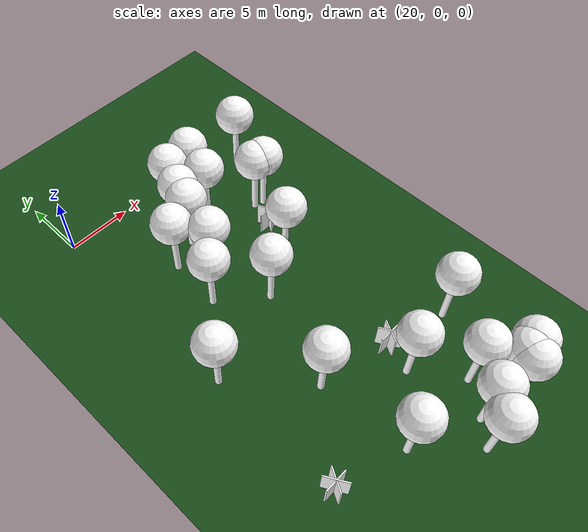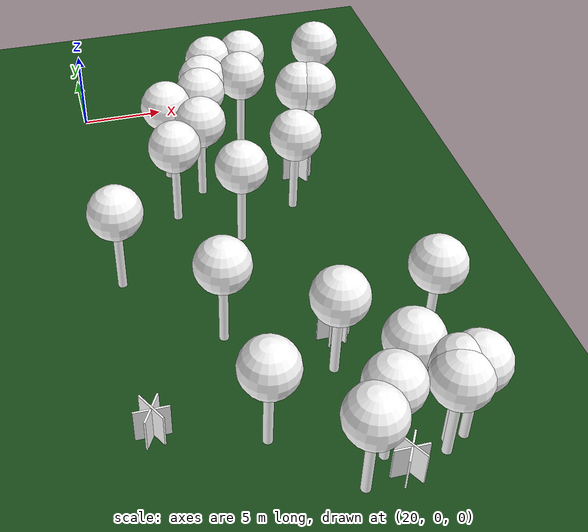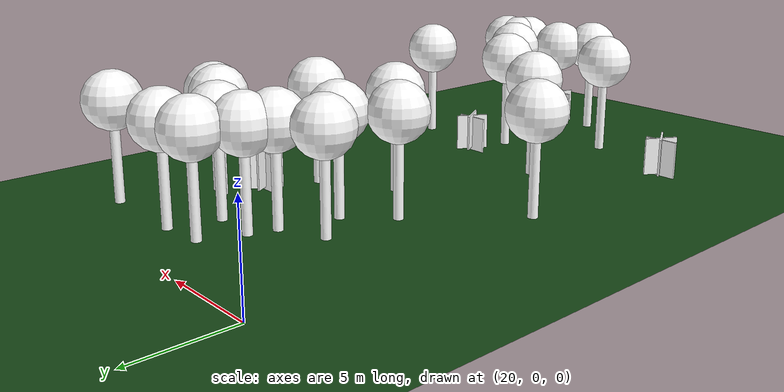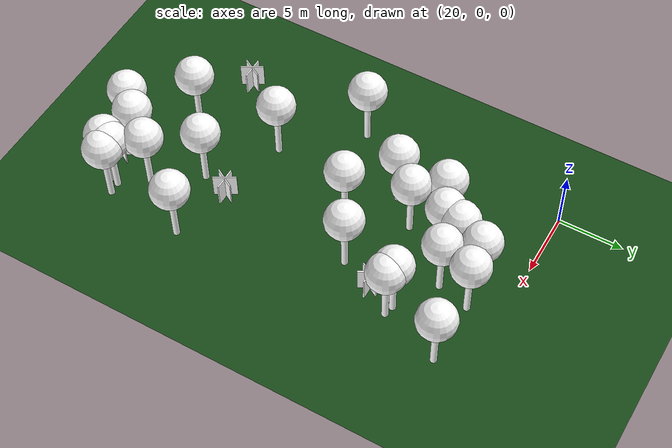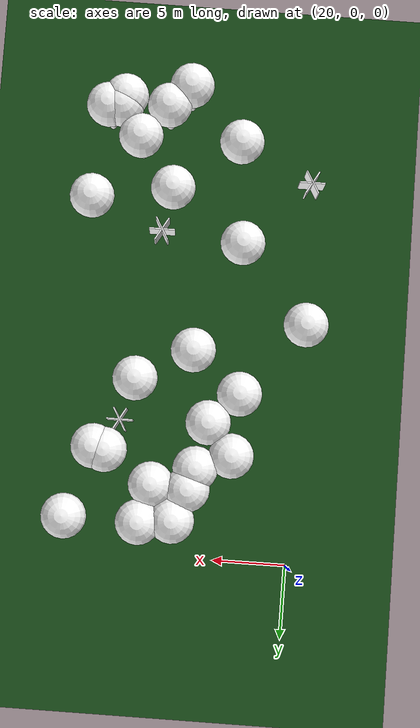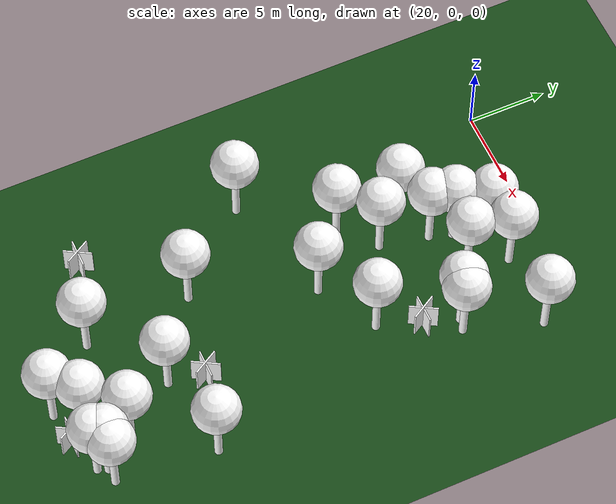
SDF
<sdf version="1.8">
 <world name="forest_world">
  <model name="fire_7">
   <pose>32.05 -9.20 1.00 0 0 0.00</pose>
   <static>true</static>
   <link name="fire_link">
    <visual name="fire_7_fire_main_0">
     <geometry><box><size>1.80 0.10 2.00</size></box></geometry>
     <material>
      <ambient>0.7 0.35 0.0 1</ambient>
      <diffuse>1 1 1 1</diffuse>
      <specular>0 0 0 1</specular>
      <emissive>0 0 0 1</emissive>
      <pbr>
       <metal><albedo_map>textures/fire.png</albedo_map><metalness>0.0</metalness><roughness>0.6</roughness></metal>
      </pbr>
     </material>
     <transparency>0.0</transparency>
     <cast_shadows>false</cast_shadows>
    </visual>
    <visual name="fire_7_fire_60_1">
     <pose>0.00 0.00 0.10 0 0 1.05</pose>
     <geometry><box><size>1.80 0.10 2.00</size></box></geometry>
     <material>
      <ambient>0.7 0.35 0.0 1</ambient>
      <diffuse>1 1 1 1</diffuse>
      <specular>0 0 0 1</specular>
      <emissive>0 0 0 1</emissive>
      <pbr>
       <metal><albedo_map>textures/fire.png</albedo_map><metalness>0.0</metalness><roughness>0.6</roughness></metal>
      </pbr>
     </material>
     <transparency>0.0</transparency>
     <cast_shadows>false</cast_shadows>
    </visual>
    <visual name="fire_7_fire_120_2">
     <pose>0.00 0.00 0.20 0 0 2.09</pose>
     <geometry><box><size>1.80 0.10 2.00</size></box></geometry>
     <material>
      <ambient>0.7 0.35 0.0 1</ambient>
      <diffuse>1 1 1 1</diffuse>
      <specular>0 0 0 1</specular>
      <emissive>0 0 0 1</emissive>
      <pbr>
       <metal><albedo_map>textures/fire.png</albedo_map><metalness>0.0</metalness><roughness>0.6</roughness></metal>
      </pbr>
     </material>
     <transparency>0.0</transparency>
     <cast_shadows>false</cast_shadows>
    </visual>
    <light type="point" name="fire_7_light_0">
     <pose>0.40 0.00 0.50 0 0 0</pose>
     <diffuse>1.0 0.7 0.3 1</diffuse>
     <specular>1.0 0.8 0.3 1</specular>
     <intensity>2</intensity>
     <attenuation>
      <range>2</range>
      <constant>0.1</constant>
      <linear>0.05</linear>
      <quadratic>0.02</quadratic>
     </attenuation>
     <cast_shadows>false</cast_shadows>
    </light>
    <light type="point" name="fire_7_light_1">
     <pose>-0.20 0.35 0.50 0 0 0</pose>
     <diffuse>1.0 0.7 0.3 1</diffuse>
     <specular>1.0 0.8 0.3 1</specular>
     <intensity>2</intensity>
     <attenuation>
      <range>2</range>
      <constant>0.1</constant>
      <linear>0.05</linear>
      <quadratic>0.02</quadratic>
     </attenuation>
     <cast_shadows>false</cast_shadows>
    </light>
    <light type="point" name="fire_7_light_2">
     <pose>-0.20 -0.35 0.50 0 0 0</pose>
     <diffuse>1.0 0.7 0.3 1</diffuse>
     <specular>1.0 0.8 0.3 1</specular>
     <intensity>2</intensity>
     <attenuation>
      <range>2</range>
      <constant>0.1</constant>
      <linear>0.05</linear>
      <quadratic>0.02</quadratic>
     </attenuation>
     <cast_shadows>false</cast_shadows>
    </light>
   </link>
   <plugin filename="libignition-gazebo-pose-publisher-system.so" name="ignition::gazebo::systems::PosePublisher">
    <frame_id>world</frame_id>
    <publish_link_pose>true</publish_link_pose>
    <use_pose_vector_msg>true</use_pose_vector_msg>
    <static_publisher>true</static_publisher>
    <static_update_frequency>1</static_update_frequency>
   </plugin>
  </model>
  <model name="fire_27">
   <pose>30.87 -31.41 1.00 0 0 0.00</pose>
   <static>true</static>
   <link name="fire_link">
    <visual name="fire_27_fire_main_0">
     <geometry><box><size>1.80 0.10 2.00</size></box></geometry>
     <material>
      <ambient>0.7 0.35 0.0 1</ambient>
      <diffuse>1 1 1 1</diffuse>
      <specular>0 0 0 1</specular>
      <emissive>0 0 0 1</emissive>
      <pbr>
       <metal><albedo_map>textures/fire.png</albedo_map><metalness>0.0</metalness><roughness>0.6</roughness></metal>
      </pbr>
     </material>
     <transparency>0.0</transparency>
     <cast_shadows>false</cast_shadows>
    </visual>
    <visual name="fire_27_fire_60_1">
     <pose>0.00 0.00 0.10 0 0 1.05</pose>
     <geometry><box><size>1.80 0.10 2.00</size></box></geometry>
     <material>
      <ambient>0.7 0.35 0.0 1</ambient>
      <diffuse>1 1 1 1</diffuse>
      <specular>0 0 0 1</specular>
      <emissive>0 0 0 1</emissive>
      <pbr>
       <metal><albedo_map>textures/fire.png</albedo_map><metalness>0.0</metalness><roughness>0.6</roughness></metal>
      </pbr>
     </material>
     <transparency>0.0</transparency>
     <cast_shadows>false</cast_shadows>
    </visual>
    <visual name="fire_27_fire_120_2">
     <pose>0.00 0.00 0.20 0 0 2.09</pose>
     <geometry><box><size>1.80 0.10 2.00</size></box></geometry>
     <material>
      <ambient>0.7 0.35 0.0 1</ambient>
      <diffuse>1 1 1 1</diffuse>
      <specular>0 0 0 1</specular>
      <emissive>0 0 0 1</emissive>
      <pbr>
       <metal><albedo_map>textures/fire.png</albedo_map><metalness>0.0</metalness><roughness>0.6</roughness></metal>
      </pbr>
     </material>
     <transparency>0.0</transparency>
     <cast_shadows>false</cast_shadows>
    </visual>
    <light type="point" name="fire_27_light_0">
     <pose>0.40 0.00 0.50 0 0 0</pose>
     <diffuse>1.0 0.7 0.3 1</diffuse>
     <specular>1.0 0.8 0.3 1</specular>
     <intensity>2</intensity>
     <attenuation>
      <range>2</range>
      <constant>0.1</constant>
      <linear>0.05</linear>
      <quadratic>0.02</quadratic>
     </attenuation>
     <cast_shadows>false</cast_shadows>
    </light>
    <light type="point" name="fire_27_light_1">
     <pose>-0.20 0.35 0.50 0 0 0</pose>
     <diffuse>1.0 0.7 0.3 1</diffuse>
     <specular>1.0 0.8 0.3 1</specular>
     <intensity>2</intensity>
     <attenuation>
      <range>2</range>
      <constant>0.1</constant>
      <linear>0.05</linear>
      <quadratic>0.02</quadratic>
     </attenuation>
     <cast_shadows>false</cast_shadows>
    </light>
    <light type="point" name="fire_27_light_2">
     <pose>-0.20 -0.35 0.50 0 0 0</pose>
     <diffuse>1.0 0.7 0.3 1</diffuse>
     <specular>1.0 0.8 0.3 1</specular>
     <intensity>2</intensity>
     <attenuation>
      <range>2</range>
      <constant>0.1</constant>
      <linear>0.05</linear>
      <quadratic>0.02</quadratic>
     </attenuation>
     <cast_shadows>false</cast_shadows>
    </light>
   </link>
   <plugin filename="libignition-gazebo-pose-publisher-system.so" name="ignition::gazebo::systems::PosePublisher">
    <frame_id>world</frame_id>
    <publish_link_pose>true</publish_link_pose>
    <use_pose_vector_msg>true</use_pose_vector_msg>
    <static_publisher>true</static_publisher>
    <static_update_frequency>1</static_update_frequency>
   </plugin>
  </model>
  <model name="fire_37">
   <pose>19.93 -26.53 1.00 0 0 0.00</pose>
   <static>true</static>
   <link name="fire_link">
    <visual name="fire_37_fire_main_0">
     <geometry><box><size>1.80 0.10 2.00</size></box></geometry>
     <material>
      <ambient>0.7 0.35 0.0 1</ambient>
      <diffuse>1 1 1 1</diffuse>
      <specular>0 0 0 1</specular>
      <emissive>0 0 0 1</emissive>
      <pbr>
       <metal><albedo_map>textures/fire.png</albedo_map><metalness>0.0</metalness><roughness>0.6</roughness></metal>
      </pbr>
     </material>
     <transparency>0.0</transparency>
     <cast_shadows>false</cast_shadows>
    </visual>
    <visual name="fire_37_fire_60_1">
     <pose>0.00 0.00 0.10 0 0 1.05</pose>
     <geometry><box><size>1.80 0.10 2.00</size></box></geometry>
     <material>
      <ambient>0.7 0.35 0.0 1</ambient>
      <diffuse>1 1 1 1</diffuse>
      <specular>0 0 0 1</specular>
      <emissive>0 0 0 1</emissive>
      <pbr>
       <metal><albedo_map>textures/fire.png</albedo_map><metalness>0.0</metalness><roughness>0.6</roughness></metal>
      </pbr>
     </material>
     <transparency>0.0</transparency>
     <cast_shadows>false</cast_shadows>
    </visual>
    <visual name="fire_37_fire_120_2">
     <pose>0.00 0.00 0.20 0 0 2.09</pose>
     <geometry><box><size>1.80 0.10 2.00</size></box></geometry>
     <material>
      <ambient>0.7 0.35 0.0 1</ambient>
      <diffuse>1 1 1 1</diffuse>
      <specular>0 0 0 1</specular>
      <emissive>0 0 0 1</emissive>
      <pbr>
       <metal><albedo_map>textures/fire.png</albedo_map><metalness>0.0</metalness><roughness>0.6</roughness></metal>
      </pbr>
     </material>
     <transparency>0.0</transparency>
     <cast_shadows>false</cast_shadows>
    </visual>
    <light type="point" name="fire_37_light_0">
     <pose>0.40 0.00 0.50 0 0 0</pose>
     <diffuse>1.0 0.7 0.3 1</diffuse>
     <specular>1.0 0.8 0.3 1</specular>
     <intensity>2</intensity>
     <attenuation>
      <range>2</range>
      <constant>0.1</constant>
      <linear>0.05</linear>
      <quadratic>0.02</quadratic>
     </attenuation>
     <cast_shadows>false</cast_shadows>
    </light>
    <light type="point" name="fire_37_light_1">
     <pose>-0.20 0.35 0.50 0 0 0</pose>
     <diffuse>1.0 0.7 0.3 1</diffuse>
     <specular>1.0 0.8 0.3 1</specular>
     <intensity>2</intensity>
     <attenuation>
      <range>2</range>
      <constant>0.1</constant>
      <linear>0.05</linear>
      <quadratic>0.02</quadratic>
     </attenuation>
     <cast_shadows>false</cast_shadows>
    </light>
    <light type="point" name="fire_37_light_2">
     <pose>-0.20 -0.35 0.50 0 0 0</pose>
     <diffuse>1.0 0.7 0.3 1</diffuse>
     <specular>1.0 0.8 0.3 1</specular>
     <intensity>2</intensity>
     <attenuation>
      <range>2</range>
      <constant>0.1</constant>
      <linear>0.05</linear>
      <quadratic>0.02</quadratic>
     </attenuation>
     <cast_shadows>false</cast_shadows>
    </light>
   </link>
   <plugin filename="libignition-gazebo-pose-publisher-system.so" name="ignition::gazebo::systems::PosePublisher">
    <frame_id>world</frame_id>
    <publish_link_pose>true</publish_link_pose>
    <use_pose_vector_msg>true</use_pose_vector_msg>
    <static_publisher>true</static_publisher>
    <static_update_frequency>1</static_update_frequency>
   </plugin>
  </model>
  <model name="fire_45">
   <pose>30.12 -22.53 1.00 0 0 0.00</pose>
   <static>true</static>
   <link name="fire_link">
    <visual name="fire_45_fire_main_0">
     <geometry><box><size>1.80 0.10 2.00</size></box></geometry>
     <material>
      <ambient>0.7 0.35 0.0 1</ambient>
      <diffuse>1 1 1 1</diffuse>
      <specular>0 0 0 1</specular>
      <emissive>0 0 0 1</emissive>
      <pbr>
       <metal><albedo_map>textures/fire.png</albedo_map><metalness>0.0</metalness><roughness>0.6</roughness></metal>
      </pbr>
     </material>
     <transparency>0.0</transparency>
     <cast_shadows>false</cast_shadows>
    </visual>
    <visual name="fire_45_fire_60_1">
     <pose>0.00 0.00 0.10 0 0 1.05</pose>
     <geometry><box><size>1.80 0.10 2.00</size></box></geometry>
     <material>
      <ambient>0.7 0.35 0.0 1</ambient>
      <diffuse>1 1 1 1</diffuse>
      <specular>0 0 0 1</specular>
      <emissive>0 0 0 1</emissive>
      <pbr>
       <metal><albedo_map>textures/fire.png</albedo_map><metalness>0.0</metalness><roughness>0.6</roughness></metal>
      </pbr>
     </material>
     <transparency>0.0</transparency>
     <cast_shadows>false</cast_shadows>
    </visual>
    <visual name="fire_45_fire_120_2">
     <pose>0.00 0.00 0.20 0 0 2.09</pose>
     <geometry><box><size>1.80 0.10 2.00</size></box></geometry>
     <material>
      <ambient>0.7 0.35 0.0 1</ambient>
      <diffuse>1 1 1 1</diffuse>
      <specular>0 0 0 1</specular>
      <emissive>0 0 0 1</emissive>
      <pbr>
       <metal><albedo_map>textures/fire.png</albedo_map><metalness>0.0</metalness><roughness>0.6</roughness></metal>
      </pbr>
     </material>
     <transparency>0.0</transparency>
     <cast_shadows>false</cast_shadows>
    </visual>
    <light type="point" name="fire_45_light_0">
     <pose>0.40 0.00 0.50 0 0 0</pose>
     <diffuse>1.0 0.7 0.3 1</diffuse>
     <specular>1.0 0.8 0.3 1</specular>
     <intensity>2</intensity>
     <attenuation>
      <range>2</range>
      <constant>0.1</constant>
      <linear>0.05</linear>
      <quadratic>0.02</quadratic>
     </attenuation>
     <cast_shadows>false</cast_shadows>
    </light>
    <light type="point" name="fire_45_light_1">
     <pose>-0.20 0.35 0.50 0 0 0</pose>
     <diffuse>1.0 0.7 0.3 1</diffuse>
     <specular>1.0 0.8 0.3 1</specular>
     <intensity>2</intensity>
     <attenuation>
      <range>2</range>
      <constant>0.1</constant>
      <linear>0.05</linear>
      <quadratic>0.02</quadratic>
     </attenuation>
     <cast_shadows>false</cast_shadows>
    </light>
    <light type="point" name="fire_45_light_2">
     <pose>-0.20 -0.35 0.50 0 0 0</pose>
     <diffuse>1.0 0.7 0.3 1</diffuse>
     <specular>1.0 0.8 0.3 1</specular>
     <intensity>2</intensity>
     <attenuation>
      <range>2</range>
      <constant>0.1</constant>
      <linear>0.05</linear>
      <quadratic>0.02</quadratic>
     </attenuation>
     <cast_shadows>false</cast_shadows>
    </light>
   </link>
   <plugin filename="libignition-gazebo-pose-publisher-system.so" name="ignition::gazebo::systems::PosePublisher">
    <frame_id>world</frame_id>
    <publish_link_pose>true</publish_link_pose>
    <use_pose_vector_msg>true</use_pose_vector_msg>
    <static_publisher>true</static_publisher>
    <static_update_frequency>1</static_update_frequency>
   </plugin>
  </model>
  <model name="tree_simple469">
   <static>1</static>
   <link name="link">
    <pose>0 0 0.1 0 -0 0</pose>
    <collision name="collision_trunk">
     <pose>0 0 2 0 -0 0</pose>
     <geometry><cylinder><radius>0.25</radius><length>4</length></cylinder></geometry>
    </collision>
    <collision name="collision_treetop">
     <pose>0 0 5.2 0 -0 0</pose>
     <geometry><sphere><radius>1.5</radius></sphere></geometry>
    </collision>
    <visual name="trunk">
     <pose>0 0 2 0 -0 0</pose>
     <geometry><cylinder><radius>0.25</radius><length>4</length></cylinder></geometry>
     <material>
      <ambient>0.5 0.5 0.5 1</ambient>
      <diffuse>1.0 1.0 1.0 1</diffuse>
      <specular>0.0 0.0 0.0 1</specular>
      <pbr>
       <metal>
        <albedo_map>../worlds/textures/tree_simple_trunk.jpg</albedo_map>
        <metalness>0.0</metalness>
        <roughness>0.8</roughness>
       </metal>
      </pbr>
     </material>
    </visual>
    <visual name="treetop">
     <pose>0 0 5.2 0 -0 0</pose>
     <geometry><sphere><radius>1.5</radius></sphere></geometry>
     <material>
      <ambient>0.5 0.5 0.5 1</ambient>
      <diffuse>1.0 1.0 1.0 1</diffuse>
      <specular>0.0 0.0 0.0 1</specular>
      <pbr>
       <metal>
        <albedo_map>../worlds/textures/tree_simple_treetop.jpg</albedo_map>
        <metalness>0.0</metalness>
        <roughness>0.9</roughness>
       </metal>
      </pbr>
     </material>
    </visual>
   </link>
   <pose>28.6908934165 -31.7515844244 0 0 -0 0</pose>
  </model>
  <model name="tree_simple468">
   <static>1</static>
   <link name="link">
    <pose>0 0 0.1 0 -0 0</pose>
    <collision name="collision_trunk">
     <pose>0 0 2 0 -0 0</pose>
     <geometry><cylinder><radius>0.25</radius><length>4</length></cylinder></geometry>
    </collision>
    <collision name="collision_treetop">
     <pose>0 0 5.2 0 -0 0</pose>
     <geometry><sphere><radius>1.5</radius></sphere></geometry>
    </collision>
    <visual name="trunk">
     <pose>0 0 2 0 -0 0</pose>
     <geometry><cylinder><radius>0.25</radius><length>4</length></cylinder></geometry>
     <material>
      <ambient>0.5 0.5 0.5 1</ambient>
      <diffuse>1.0 1.0 1.0 1</diffuse>
      <specular>0.0 0.0 0.0 1</specular>
      <pbr>
       <metal>
        <albedo_map>../worlds/textures/tree_simple_trunk.jpg</albedo_map>
        <metalness>0.0</metalness>
        <roughness>0.8</roughness>
       </metal>
      </pbr>
     </material>
    </visual>
    <visual name="treetop">
     <pose>0 0 5.2 0 -0 0</pose>
     <geometry><sphere><radius>1.5</radius></sphere></geometry>
     <material>
      <ambient>0.5 0.5 0.5 1</ambient>
      <diffuse>1.0 1.0 1.0 1</diffuse>
      <specular>0.0 0.0 0.0 1</specular>
      <pbr>
       <metal>
        <albedo_map>../worlds/textures/tree_simple_treetop.jpg</albedo_map>
        <metalness>0.0</metalness>
        <roughness>0.9</roughness>
       </metal>
      </pbr>
     </material>
    </visual>
   </link>
   <pose>33.4354348071 -7.20044037788 0 0 -0 0</pose>
  </model>
  <model name="tree_simple451">
   <static>1</static>
   <link name="link">
    <pose>0 0 0.1 0 -0 0</pose>
    <collision name="collision_trunk">
     <pose>0 0 2 0 -0 0</pose>
     <geometry><cylinder><radius>0.25</radius><length>4</length></cylinder></geometry>
    </collision>
    <collision name="collision_treetop">
     <pose>0 0 5.2 0 -0 0</pose>
     <geometry><sphere><radius>1.5</radius></sphere></geometry>
    </collision>
    <visual name="trunk">
     <pose>0 0 2 0 -0 0</pose>
     <geometry><cylinder><radius>0.25</radius><length>4</length></cylinder></geometry>
     <material>
      <ambient>0.5 0.5 0.5 1</ambient>
      <diffuse>1.0 1.0 1.0 1</diffuse>
      <specular>0.0 0.0 0.0 1</specular>
      <pbr>
       <metal>
        <albedo_map>../worlds/textures/tree_simple_trunk.jpg</albedo_map>
        <metalness>0.0</metalness>
        <roughness>0.8</roughness>
       </metal>
      </pbr>
     </material>
    </visual>
    <visual name="treetop">
     <pose>0 0 5.2 0 -0 0</pose>
     <geometry><sphere><radius>1.5</radius></sphere></geometry>
     <material>
      <ambient>0.5 0.5 0.5 1</ambient>
      <diffuse>1.0 1.0 1.0 1</diffuse>
      <specular>0.0 0.0 0.0 1</specular>
      <pbr>
       <metal>
        <albedo_map>../worlds/textures/tree_simple_treetop.jpg</albedo_map>
        <metalness>0.0</metalness>
        <roughness>0.9</roughness>
       </metal>
      </pbr>
     </material>
    </visual>
   </link>
   <pose>25.0880879186 -28.1508348671 0 0 -0 0</pose>
  </model>
  <model name="tree_simple429">
   <static>1</static>
   <link name="link">
    <pose>0 0 0.1 0 -0 0</pose>
    <collision name="collision_trunk">
     <pose>0 0 2 0 -0 0</pose>
     <geometry><cylinder><radius>0.25</radius><length>4</length></cylinder></geometry>
    </collision>
    <collision name="collision_treetop">
     <pose>0 0 5.2 0 -0 0</pose>
     <geometry><sphere><radius>1.5</radius></sphere></geometry>
    </collision>
    <visual name="trunk">
     <pose>0 0 2 0 -0 0</pose>
     <geometry><cylinder><radius>0.25</radius><length>4</length></cylinder></geometry>
     <material>
      <ambient>0.5 0.5 0.5 1</ambient>
      <diffuse>1.0 1.0 1.0 1</diffuse>
      <specular>0.0 0.0 0.0 1</specular>
      <pbr>
       <metal>
        <albedo_map>../worlds/textures/tree_simple_trunk.jpg</albedo_map>
        <metalness>0.0</metalness>
        <roughness>0.8</roughness>
       </metal>
      </pbr>
     </material>
    </visual>
    <visual name="treetop">
     <pose>0 0 5.2 0 -0 0</pose>
     <geometry><sphere><radius>1.5</radius></sphere></geometry>
     <material>
      <ambient>0.5 0.5 0.5 1</ambient>
      <diffuse>1.0 1.0 1.0 1</diffuse>
      <specular>0.0 0.0 0.0 1</specular>
      <pbr>
       <metal>
        <albedo_map>../worlds/textures/tree_simple_treetop.jpg</albedo_map>
        <metalness>0.0</metalness>
        <roughness>0.9</roughness>
       </metal>
      </pbr>
     </material>
    </visual>
   </link>
   <pose>29.4727075469 -24.7358283571 0 0 -0 0</pose>
  </model>
  <model name="tree_simple394">
   <static>1</static>
   <link name="link">
    <pose>0 0 0.1 0 -0 0</pose>
    <collision name="collision_trunk">
     <pose>0 0 2 0 -0 0</pose>
     <geometry><cylinder><radius>0.25</radius><length>4</length></cylinder></geometry>
    </collision>
    <collision name="collision_treetop">
     <pose>0 0 5.2 0 -0 0</pose>
     <geometry><sphere><radius>1.5</radius></sphere></geometry>
    </collision>
    <visual name="trunk">
     <pose>0 0 2 0 -0 0</pose>
     <geometry><cylinder><radius>0.25</radius><length>4</length></cylinder></geometry>
     <material>
      <ambient>0.5 0.5 0.5 1</ambient>
      <diffuse>1.0 1.0 1.0 1</diffuse>
      <specular>0.0 0.0 0.0 1</specular>
      <pbr>
       <metal>
        <albedo_map>../worlds/textures/tree_simple_trunk.jpg</albedo_map>
        <metalness>0.0</metalness>
        <roughness>0.8</roughness>
       </metal>
      </pbr>
     </material>
    </visual>
    <visual name="treetop">
     <pose>0 0 5.2 0 -0 0</pose>
     <geometry><sphere><radius>1.5</radius></sphere></geometry>
     <material>
      <ambient>0.5 0.5 0.5 1</ambient>
      <diffuse>1.0 1.0 1.0 1</diffuse>
      <specular>0.0 0.0 0.0 1</specular>
      <pbr>
       <metal>
        <albedo_map>../worlds/textures/tree_simple_treetop.jpg</albedo_map>
        <metalness>0.0</metalness>
        <roughness>0.9</roughness>
       </metal>
      </pbr>
     </material>
    </visual>
   </link>
   <pose>26.6658652991 -6.19294115589 0 0 -0 0</pose>
  </model>
  <model name="tree_simple390">
   <static>1</static>
   <link name="link">
    <pose>0 0 0.1 0 -0 0</pose>
    <collision name="collision_trunk">
     <pose>0 0 2 0 -0 0</pose>
     <geometry><cylinder><radius>0.25</radius><length>4</length></cylinder></geometry>
    </collision>
    <collision name="collision_treetop">
     <pose>0 0 5.2 0 -0 0</pose>
     <geometry><sphere><radius>1.5</radius></sphere></geometry>
    </collision>
    <visual name="trunk">
     <pose>0 0 2 0 -0 0</pose>
     <geometry><cylinder><radius>0.25</radius><length>4</length></cylinder></geometry>
     <material>
      <ambient>0.5 0.5 0.5 1</ambient>
      <diffuse>1.0 1.0 1.0 1</diffuse>
      <specular>0.0 0.0 0.0 1</specular>
      <pbr>
       <metal>
        <albedo_map>../worlds/textures/tree_simple_trunk.jpg</albedo_map>
        <metalness>0.0</metalness>
        <roughness>0.8</roughness>
       </metal>
      </pbr>
     </material>
    </visual>
    <visual name="treetop">
     <pose>0 0 5.2 0 -0 0</pose>
     <geometry><sphere><radius>1.5</radius></sphere></geometry>
     <material>
      <ambient>0.5 0.5 0.5 1</ambient>
      <diffuse>1.0 1.0 1.0 1</diffuse>
      <specular>0.0 0.0 0.0 1</specular>
      <pbr>
       <metal>
        <albedo_map>../worlds/textures/tree_simple_treetop.jpg</albedo_map>
        <metalness>0.0</metalness>
        <roughness>0.9</roughness>
       </metal>
      </pbr>
     </material>
    </visual>
   </link>
   <pose>34.8279648661 -23.7978261523 0 0 -0 0</pose>
  </model>
  <model name="tree_simple385">
   <static>1</static>
   <link name="link">
    <pose>0 0 0.1 0 -0 0</pose>
    <collision name="collision_trunk">
     <pose>0 0 2 0 -0 0</pose>
     <geometry><cylinder><radius>0.25</radius><length>4</length></cylinder></geometry>
    </collision>
    <collision name="collision_treetop">
     <pose>0 0 5.2 0 -0 0</pose>
     <geometry><sphere><radius>1.5</radius></sphere></geometry>
    </collision>
    <visual name="trunk">
     <pose>0 0 2 0 -0 0</pose>
     <geometry><cylinder><radius>0.25</radius><length>4</length></cylinder></geometry>
     <material>
      <ambient>0.5 0.5 0.5 1</ambient>
      <diffuse>1.0 1.0 1.0 1</diffuse>
      <specular>0.0 0.0 0.0 1</specular>
      <pbr>
       <metal>
        <albedo_map>../worlds/textures/tree_simple_trunk.jpg</albedo_map>
        <metalness>0.0</metalness>
        <roughness>0.8</roughness>
       </metal>
      </pbr>
     </material>
    </visual>
    <visual name="treetop">
     <pose>0 0 5.2 0 -0 0</pose>
     <geometry><sphere><radius>1.5</radius></sphere></geometry>
     <material>
      <ambient>0.5 0.5 0.5 1</ambient>
      <diffuse>1.0 1.0 1.0 1</diffuse>
      <specular>0.0 0.0 0.0 1</specular>
      <pbr>
       <metal>
        <albedo_map>../worlds/textures/tree_simple_treetop.jpg</albedo_map>
        <metalness>0.0</metalness>
        <roughness>0.9</roughness>
       </metal>
      </pbr>
     </material>
    </visual>
   </link>
   <pose>32.6946046779 -7.01468529962 0 0 -0 0</pose>
  </model>
  <model name="tree_simple301">
   <static>1</static>
   <link name="link">
    <pose>0 0 0.1 0 -0 0</pose>
    <collision name="collision_trunk">
     <pose>0 0 2 0 -0 0</pose>
     <geometry><cylinder><radius>0.25</radius><length>4</length></cylinder></geometry>
    </collision>
    <collision name="collision_treetop">
     <pose>0 0 5.2 0 -0 0</pose>
     <geometry><sphere><radius>1.5</radius></sphere></geometry>
    </collision>
    <visual name="trunk">
     <pose>0 0 2 0 -0 0</pose>
     <geometry><cylinder><radius>0.25</radius><length>4</length></cylinder></geometry>
     <material>
      <ambient>0.5 0.5 0.5 1</ambient>
      <diffuse>1.0 1.0 1.0 1</diffuse>
      <specular>0.0 0.0 0.0 1</specular>
      <pbr>
       <metal>
        <albedo_map>../worlds/textures/tree_simple_trunk.jpg</albedo_map>
        <metalness>0.0</metalness>
        <roughness>0.8</roughness>
       </metal>
      </pbr>
     </material>
    </visual>
    <visual name="treetop">
     <pose>0 0 5.2 0 -0 0</pose>
     <geometry><sphere><radius>1.5</radius></sphere></geometry>
     <material>
      <ambient>0.5 0.5 0.5 1</ambient>
      <diffuse>1.0 1.0 1.0 1</diffuse>
      <specular>0.0 0.0 0.0 1</specular>
      <pbr>
       <metal>
        <albedo_map>../worlds/textures/tree_simple_treetop.jpg</albedo_map>
        <metalness>0.0</metalness>
        <roughness>0.9</roughness>
       </metal>
      </pbr>
     </material>
    </visual>
   </link>
   <pose>27.965012063 -2.69695305694 0 0 -0 0</pose>
  </model>
  <model name="tree_simple298">
   <static>1</static>
   <link name="link">
    <pose>0 0 0.1 0 -0 0</pose>
    <collision name="collision_trunk">
     <pose>0 0 2 0 -0 0</pose>
     <geometry><cylinder><radius>0.25</radius><length>4</length></cylinder></geometry>
    </collision>
    <collision name="collision_treetop">
     <pose>0 0 5.2 0 -0 0</pose>
     <geometry><sphere><radius>1.5</radius></sphere></geometry>
    </collision>
    <visual name="trunk">
     <pose>0 0 2 0 -0 0</pose>
     <geometry><cylinder><radius>0.25</radius><length>4</length></cylinder></geometry>
     <material>
      <ambient>0.5 0.5 0.5 1</ambient>
      <diffuse>1.0 1.0 1.0 1</diffuse>
      <specular>0.0 0.0 0.0 1</specular>
      <pbr>
       <metal>
        <albedo_map>../worlds/textures/tree_simple_trunk.jpg</albedo_map>
        <metalness>0.0</metalness>
        <roughness>0.8</roughness>
       </metal>
      </pbr>
     </material>
    </visual>
    <visual name="treetop">
     <pose>0 0 5.2 0 -0 0</pose>
     <geometry><sphere><radius>1.5</radius></sphere></geometry>
     <material>
      <ambient>0.5 0.5 0.5 1</ambient>
      <diffuse>1.0 1.0 1.0 1</diffuse>
      <specular>0.0 0.0 0.0 1</specular>
      <pbr>
       <metal>
        <albedo_map>../worlds/textures/tree_simple_treetop.jpg</albedo_map>
        <metalness>0.0</metalness>
        <roughness>0.9</roughness>
       </metal>
      </pbr>
     </material>
    </visual>
   </link>
   <pose>33.2901714534 -30.1267743678 0 0 -0 0</pose>
  </model>
  <model name="tree_simple290">
   <static>1</static>
   <link name="link">
    <pose>0 0 0.1 0 -0 0</pose>
    <collision name="collision_trunk">
     <pose>0 0 2 0 -0 0</pose>
     <geometry><cylinder><radius>0.25</radius><length>4</length></cylinder></geometry>
    </collision>
    <collision name="collision_treetop">
     <pose>0 0 5.2 0 -0 0</pose>
     <geometry><sphere><radius>1.5</radius></sphere></geometry>
    </collision>
    <visual name="trunk">
     <pose>0 0 2 0 -0 0</pose>
     <geometry><cylinder><radius>0.25</radius><length>4</length></cylinder></geometry>
     <material>
      <ambient>0.5 0.5 0.5 1</ambient>
      <diffuse>1.0 1.0 1.0 1</diffuse>
      <specular>0.0 0.0 0.0 1</specular>
      <pbr>
       <metal>
        <albedo_map>../worlds/textures/tree_simple_trunk.jpg</albedo_map>
        <metalness>0.0</metalness>
        <roughness>0.8</roughness>
       </metal>
      </pbr>
     </material>
    </visual>
    <visual name="treetop">
     <pose>0 0 5.2 0 -0 0</pose>
     <geometry><sphere><radius>1.5</radius></sphere></geometry>
     <material>
      <ambient>0.5 0.5 0.5 1</ambient>
      <diffuse>1.0 1.0 1.0 1</diffuse>
      <specular>0.0 0.0 0.0 1</specular>
      <pbr>
       <metal>
        <albedo_map>../worlds/textures/tree_simple_treetop.jpg</albedo_map>
        <metalness>0.0</metalness>
        <roughness>0.9</roughness>
       </metal>
      </pbr>
     </material>
    </visual>
   </link>
   <pose>27.3398552582 -13.9618363734 0 0 -0 0</pose>
  </model>
  <model name="tree_simple288">
   <static>1</static>
   <link name="link">
    <pose>0 0 0.1 0 -0 0</pose>
    <collision name="collision_trunk">
     <pose>0 0 2 0 -0 0</pose>
     <geometry><cylinder><radius>0.25</radius><length>4</length></cylinder></geometry>
    </collision>
    <collision name="collision_treetop">
     <pose>0 0 5.2 0 -0 0</pose>
     <geometry><sphere><radius>1.5</radius></sphere></geometry>
    </collision>
    <visual name="trunk">
     <pose>0 0 2 0 -0 0</pose>
     <geometry><cylinder><radius>0.25</radius><length>4</length></cylinder></geometry>
     <material>
      <ambient>0.5 0.5 0.5 1</ambient>
      <diffuse>1.0 1.0 1.0 1</diffuse>
      <specular>0.0 0.0 0.0 1</specular>
      <pbr>
       <metal>
        <albedo_map>../worlds/textures/tree_simple_trunk.jpg</albedo_map>
        <metalness>0.0</metalness>
        <roughness>0.8</roughness>
       </metal>
      </pbr>
     </material>
    </visual>
    <visual name="treetop">
     <pose>0 0 5.2 0 -0 0</pose>
     <geometry><sphere><radius>1.5</radius></sphere></geometry>
     <material>
      <ambient>0.5 0.5 0.5 1</ambient>
      <diffuse>1.0 1.0 1.0 1</diffuse>
      <specular>0.0 0.0 0.0 1</specular>
      <pbr>
       <metal>
        <albedo_map>../worlds/textures/tree_simple_treetop.jpg</albedo_map>
        <metalness>0.0</metalness>
        <roughness>0.9</roughness>
       </metal>
      </pbr>
     </material>
    </visual>
   </link>
   <pose>27.0972467775 -4.81040951666 0 0 -0 0</pose>
  </model>
  <model name="tree_simple267">
   <static>1</static>
   <link name="link">
    <pose>0 0 0.1 0 -0 0</pose>
    <collision name="collision_trunk">
     <pose>0 0 2 0 -0 0</pose>
     <geometry><cylinder><radius>0.25</radius><length>4</length></cylinder></geometry>
    </collision>
    <collision name="collision_treetop">
     <pose>0 0 5.2 0 -0 0</pose>
     <geometry><sphere><radius>1.5</radius></sphere></geometry>
    </collision>
    <visual name="trunk">
     <pose>0 0 2 0 -0 0</pose>
     <geometry><cylinder><radius>0.25</radius><length>4</length></cylinder></geometry>
     <material>
      <ambient>0.5 0.5 0.5 1</ambient>
      <diffuse>1.0 1.0 1.0 1</diffuse>
      <specular>0.0 0.0 0.0 1</specular>
      <pbr>
       <metal>
        <albedo_map>../worlds/textures/tree_simple_trunk.jpg</albedo_map>
        <metalness>0.0</metalness>
        <roughness>0.8</roughness>
       </metal>
      </pbr>
     </material>
    </visual>
    <visual name="treetop">
     <pose>0 0 5.2 0 -0 0</pose>
     <geometry><sphere><radius>1.5</radius></sphere></geometry>
     <material>
      <ambient>0.5 0.5 0.5 1</ambient>
      <diffuse>1.0 1.0 1.0 1</diffuse>
      <specular>0.0 0.0 0.0 1</specular>
      <pbr>
       <metal>
        <albedo_map>../worlds/textures/tree_simple_treetop.jpg</albedo_map>
        <metalness>0.0</metalness>
        <roughness>0.9</roughness>
       </metal>
      </pbr>
     </material>
    </visual>
   </link>
   <pose>26.0311147771 -9.256788114 0 0 -0 0</pose>
  </model>
  <model name="tree_simple255">
   <static>1</static>
   <link name="link">
    <pose>0 0 0.1 0 -0 0</pose>
    <collision name="collision_trunk">
     <pose>0 0 2 0 -0 0</pose>
     <geometry><cylinder><radius>0.25</radius><length>4</length></cylinder></geometry>
    </collision>
    <collision name="collision_treetop">
     <pose>0 0 5.2 0 -0 0</pose>
     <geometry><sphere><radius>1.5</radius></sphere></geometry>
    </collision>
    <visual name="trunk">
     <pose>0 0 2 0 -0 0</pose>
     <geometry><cylinder><radius>0.25</radius><length>4</length></cylinder></geometry>
     <material>
      <ambient>0.5 0.5 0.5 1</ambient>
      <diffuse>1.0 1.0 1.0 1</diffuse>
      <specular>0.0 0.0 0.0 1</specular>
      <pbr>
       <metal>
        <albedo_map>../worlds/textures/tree_simple_trunk.jpg</albedo_map>
        <metalness>0.0</metalness>
        <roughness>0.8</roughness>
       </metal>
      </pbr>
     </material>
    </visual>
    <visual name="treetop">
     <pose>0 0 5.2 0 -0 0</pose>
     <geometry><sphere><radius>1.5</radius></sphere></geometry>
     <material>
      <ambient>0.5 0.5 0.5 1</ambient>
      <diffuse>1.0 1.0 1.0 1</diffuse>
      <specular>0.0 0.0 0.0 1</specular>
      <pbr>
       <metal>
        <albedo_map>../worlds/textures/tree_simple_treetop.jpg</albedo_map>
        <metalness>0.0</metalness>
        <roughness>0.9</roughness>
       </metal>
      </pbr>
     </material>
    </visual>
   </link>
   <pose>30.0970419452 -30.3026780561 0 0 -0 0</pose>
  </model>
  <model name="tree_simple211">
   <static>1</static>
   <link name="link">
    <pose>0 0 0.1 0 -0 0</pose>
    <collision name="collision_trunk">
     <pose>0 0 2 0 -0 0</pose>
     <geometry><cylinder><radius>0.25</radius><length>4</length></cylinder></geometry>
    </collision>
    <collision name="collision_treetop">
     <pose>0 0 5.2 0 -0 0</pose>
     <geometry><sphere><radius>1.5</radius></sphere></geometry>
    </collision>
    <visual name="trunk">
     <pose>0 0 2 0 -0 0</pose>
     <geometry><cylinder><radius>0.25</radius><length>4</length></cylinder></geometry>
     <material>
      <ambient>0.5 0.5 0.5 1</ambient>
      <diffuse>1.0 1.0 1.0 1</diffuse>
      <specular>0.0 0.0 0.0 1</specular>
      <pbr>
       <metal>
        <albedo_map>../worlds/textures/tree_simple_trunk.jpg</albedo_map>
        <metalness>0.0</metalness>
        <roughness>0.8</roughness>
       </metal>
      </pbr>
     </material>
    </visual>
    <visual name="treetop">
     <pose>0 0 5.2 0 -0 0</pose>
     <geometry><sphere><radius>1.5</radius></sphere></geometry>
     <material>
      <ambient>0.5 0.5 0.5 1</ambient>
      <diffuse>1.0 1.0 1.0 1</diffuse>
      <specular>0.0 0.0 0.0 1</specular>
      <pbr>
       <metal>
        <albedo_map>../worlds/textures/tree_simple_treetop.jpg</albedo_map>
        <metalness>0.0</metalness>
        <roughness>0.9</roughness>
       </metal>
      </pbr>
     </material>
    </visual>
   </link>
   <pose>24.1088627432 -11.2741546154 0 0 -0 0</pose>
  </model>
  <model name="tree_simple179">
   <static>1</static>
   <link name="link">
    <pose>0 0 0.1 0 -0 0</pose>
    <collision name="collision_trunk">
     <pose>0 0 2 0 -0 0</pose>
     <geometry><cylinder><radius>0.25</radius><length>4</length></cylinder></geometry>
    </collision>
    <collision name="collision_treetop">
     <pose>0 0 5.2 0 -0 0</pose>
     <geometry><sphere><radius>1.5</radius></sphere></geometry>
    </collision>
    <visual name="trunk">
     <pose>0 0 2 0 -0 0</pose>
     <geometry><cylinder><radius>0.25</radius><length>4</length></cylinder></geometry>
     <material>
      <ambient>0.5 0.5 0.5 1</ambient>
      <diffuse>1.0 1.0 1.0 1</diffuse>
      <specular>0.0 0.0 0.0 1</specular>
      <pbr>
       <metal>
        <albedo_map>../worlds/textures/tree_simple_trunk.jpg</albedo_map>
        <metalness>0.0</metalness>
        <roughness>0.8</roughness>
       </metal>
      </pbr>
     </material>
    </visual>
    <visual name="treetop">
     <pose>0 0 5.2 0 -0 0</pose>
     <geometry><sphere><radius>1.5</radius></sphere></geometry>
     <material>
      <ambient>0.5 0.5 0.5 1</ambient>
      <diffuse>1.0 1.0 1.0 1</diffuse>
      <specular>0.0 0.0 0.0 1</specular>
      <pbr>
       <metal>
        <albedo_map>../worlds/textures/tree_simple_treetop.jpg</albedo_map>
        <metalness>0.0</metalness>
        <roughness>0.9</roughness>
       </metal>
      </pbr>
     </material>
    </visual>
   </link>
   <pose>33.0376036796 -30.7285936232 0 0 -0 0</pose>
  </model>
  <model name="tree_simple178">
   <static>1</static>
   <link name="link">
    <pose>0 0 0.1 0 -0 0</pose>
    <collision name="collision_trunk">
     <pose>0 0 2 0 -0 0</pose>
     <geometry><cylinder><radius>0.25</radius><length>4</length></cylinder></geometry>
    </collision>
    <collision name="collision_treetop">
     <pose>0 0 5.2 0 -0 0</pose>
     <geometry><sphere><radius>1.5</radius></sphere></geometry>
    </collision>
    <visual name="trunk">
     <pose>0 0 2 0 -0 0</pose>
     <geometry><cylinder><radius>0.25</radius><length>4</length></cylinder></geometry>
     <material>
      <ambient>0.5 0.5 0.5 1</ambient>
      <diffuse>1.0 1.0 1.0 1</diffuse>
      <specular>0.0 0.0 0.0 1</specular>
      <pbr>
       <metal>
        <albedo_map>../worlds/textures/tree_simple_trunk.jpg</albedo_map>
        <metalness>0.0</metalness>
        <roughness>0.8</roughness>
       </metal>
      </pbr>
     </material>
    </visual>
    <visual name="treetop">
     <pose>0 0 5.2 0 -0 0</pose>
     <geometry><sphere><radius>1.5</radius></sphere></geometry>
     <material>
      <ambient>0.5 0.5 0.5 1</ambient>
      <diffuse>1.0 1.0 1.0 1</diffuse>
      <specular>0.0 0.0 0.0 1</specular>
      <pbr>
       <metal>
        <albedo_map>../worlds/textures/tree_simple_treetop.jpg</albedo_map>
        <metalness>0.0</metalness>
        <roughness>0.9</roughness>
       </metal>
      </pbr>
     </material>
    </visual>
   </link>
   <pose>24.3791750449 -7.18218424398 0 0 -0 0</pose>
  </model>
  <model name="tree_simple156">
   <static>1</static>
   <link name="link">
    <pose>0 0 0.1 0 -0 0</pose>
    <collision name="collision_trunk">
     <pose>0 0 2 0 -0 0</pose>
     <geometry><cylinder><radius>0.25</radius><length>4</length></cylinder></geometry>
    </collision>
    <collision name="collision_treetop">
     <pose>0 0 5.2 0 -0 0</pose>
     <geometry><sphere><radius>1.5</radius></sphere></geometry>
    </collision>
    <visual name="trunk">
     <pose>0 0 2 0 -0 0</pose>
     <geometry><cylinder><radius>0.25</radius><length>4</length></cylinder></geometry>
     <material>
      <ambient>0.5 0.5 0.5 1</ambient>
      <diffuse>1.0 1.0 1.0 1</diffuse>
      <specular>0.0 0.0 0.0 1</specular>
      <pbr>
       <metal>
        <albedo_map>../worlds/textures/tree_simple_trunk.jpg</albedo_map>
        <metalness>0.0</metalness>
        <roughness>0.8</roughness>
       </metal>
      </pbr>
     </material>
    </visual>
    <visual name="treetop">
     <pose>0 0 5.2 0 -0 0</pose>
     <geometry><sphere><radius>1.5</radius></sphere></geometry>
     <material>
      <ambient>0.5 0.5 0.5 1</ambient>
      <diffuse>1.0 1.0 1.0 1</diffuse>
      <specular>0.0 0.0 0.0 1</specular>
      <pbr>
       <metal>
        <albedo_map>../worlds/textures/tree_simple_treetop.jpg</albedo_map>
        <metalness>0.0</metalness>
        <roughness>0.9</roughness>
       </metal>
      </pbr>
     </material>
    </visual>
   </link>
   <pose>20.0356149828 -16.1600287231 0 0 -0 0</pose>
  </model>
  <model name="tree_simple133">
   <static>1</static>
   <link name="link">
    <pose>0 0 0.1 0 -0 0</pose>
    <collision name="collision_trunk">
     <pose>0 0 2 0 -0 0</pose>
     <geometry><cylinder><radius>0.25</radius><length>4</length></cylinder></geometry>
    </collision>
    <collision name="collision_treetop">
     <pose>0 0 5.2 0 -0 0</pose>
     <geometry><sphere><radius>1.5</radius></sphere></geometry>
    </collision>
    <visual name="trunk">
     <pose>0 0 2 0 -0 0</pose>
     <geometry><cylinder><radius>0.25</radius><length>4</length></cylinder></geometry>
     <material>
      <ambient>0.5 0.5 0.5 1</ambient>
      <diffuse>1.0 1.0 1.0 1</diffuse>
      <specular>0.0 0.0 0.0 1</specular>
      <pbr>
       <metal>
        <albedo_map>../worlds/textures/tree_simple_trunk.jpg</albedo_map>
        <metalness>0.0</metalness>
        <roughness>0.8</roughness>
       </metal>
      </pbr>
     </material>
    </visual>
    <visual name="treetop">
     <pose>0 0 5.2 0 -0 0</pose>
     <geometry><sphere><radius>1.5</radius></sphere></geometry>
     <material>
      <ambient>0.5 0.5 0.5 1</ambient>
      <diffuse>1.0 1.0 1.0 1</diffuse>
      <specular>0.0 0.0 0.0 1</specular>
      <pbr>
       <metal>
        <albedo_map>../worlds/textures/tree_simple_treetop.jpg</albedo_map>
        <metalness>0.0</metalness>
        <roughness>0.9</roughness>
       </metal>
      </pbr>
     </material>
    </visual>
   </link>
   <pose>34.1791859659 -30.0610700111 0 0 -0 0</pose>
  </model>
  <model name="tree_simple120">
   <static>1</static>
   <link name="link">
    <pose>0 0 0.1 0 -0 0</pose>
    <collision name="collision_trunk">
     <pose>0 0 2 0 -0 0</pose>
     <geometry><cylinder><radius>0.25</radius><length>4</length></cylinder></geometry>
    </collision>
    <collision name="collision_treetop">
     <pose>0 0 5.2 0 -0 0</pose>
     <geometry><sphere><radius>1.5</radius></sphere></geometry>
    </collision>
    <visual name="trunk">
     <pose>0 0 2 0 -0 0</pose>
     <geometry><cylinder><radius>0.25</radius><length>4</length></cylinder></geometry>
     <material>
      <ambient>0.5 0.5 0.5 1</ambient>
      <diffuse>1.0 1.0 1.0 1</diffuse>
      <specular>0.0 0.0 0.0 1</specular>
      <pbr>
       <metal>
        <albedo_map>../worlds/textures/tree_simple_trunk.jpg</albedo_map>
        <metalness>0.0</metalness>
        <roughness>0.8</roughness>
       </metal>
      </pbr>
     </material>
    </visual>
    <visual name="treetop">
     <pose>0 0 5.2 0 -0 0</pose>
     <geometry><sphere><radius>1.5</radius></sphere></geometry>
     <material>
      <ambient>0.5 0.5 0.5 1</ambient>
      <diffuse>1.0 1.0 1.0 1</diffuse>
      <specular>0.0 0.0 0.0 1</specular>
      <pbr>
       <metal>
        <albedo_map>../worlds/textures/tree_simple_treetop.jpg</albedo_map>
        <metalness>0.0</metalness>
        <roughness>0.9</roughness>
       </metal>
      </pbr>
     </material>
    </visual>
   </link>
   <pose>29.4958477129 -4.98151152309 0 0 -0 0</pose>
  </model>
  <model name="tree_simple118">
   <static>1</static>
   <link name="link">
    <pose>0 0 0.1 0 -0 0</pose>
    <collision name="collision_trunk">
     <pose>0 0 2 0 -0 0</pose>
     <geometry><cylinder><radius>0.25</radius><length>4</length></cylinder></geometry>
    </collision>
    <collision name="collision_treetop">
     <pose>0 0 5.2 0 -0 0</pose>
     <geometry><sphere><radius>1.5</radius></sphere></geometry>
    </collision>
    <visual name="trunk">
     <pose>0 0 2 0 -0 0</pose>
     <geometry><cylinder><radius>0.25</radius><length>4</length></cylinder></geometry>
     <material>
      <ambient>0.5 0.5 0.5 1</ambient>
      <diffuse>1.0 1.0 1.0 1</diffuse>
      <specular>0.0 0.0 0.0 1</specular>
      <pbr>
       <metal>
        <albedo_map>../worlds/textures/tree_simple_trunk.jpg</albedo_map>
        <metalness>0.0</metalness>
        <roughness>0.8</roughness>
       </metal>
      </pbr>
     </material>
    </visual>
    <visual name="treetop">
     <pose>0 0 5.2 0 -0 0</pose>
     <geometry><sphere><radius>1.5</radius></sphere></geometry>
     <material>
      <ambient>0.5 0.5 0.5 1</ambient>
      <diffuse>1.0 1.0 1.0 1</diffuse>
      <specular>0.0 0.0 0.0 1</specular>
      <pbr>
       <metal>
        <albedo_map>../worlds/textures/tree_simple_treetop.jpg</albedo_map>
        <metalness>0.0</metalness>
        <roughness>0.9</roughness>
       </metal>
      </pbr>
     </material>
    </visual>
   </link>
   <pose>35.015129688 -2.52683434866 0 0 -0 0</pose>
  </model>
  <model name="tree_simple70">
   <static>1</static>
   <link name="link">
    <pose>0 0 0.1 0 -0 0</pose>
    <collision name="collision_trunk">
     <pose>0 0 2 0 -0 0</pose>
     <geometry><cylinder><radius>0.25</radius><length>4</length></cylinder></geometry>
    </collision>
    <collision name="collision_treetop">
     <pose>0 0 5.2 0 -0 0</pose>
     <geometry><sphere><radius>1.5</radius></sphere></geometry>
    </collision>
    <visual name="trunk">
     <pose>0 0 2 0 -0 0</pose>
     <geometry><cylinder><radius>0.25</radius><length>4</length></cylinder></geometry>
     <material>
      <ambient>0.5 0.5 0.5 1</ambient>
      <diffuse>1.0 1.0 1.0 1</diffuse>
      <specular>0.0 0.0 0.0 1</specular>
      <pbr>
       <metal>
        <albedo_map>../worlds/textures/tree_simple_trunk.jpg</albedo_map>
        <metalness>0.0</metalness>
        <roughness>0.8</roughness>
       </metal>
      </pbr>
     </material>
    </visual>
    <visual name="treetop">
     <pose>0 0 5.2 0 -0 0</pose>
     <geometry><sphere><radius>1.5</radius></sphere></geometry>
     <material>
      <ambient>0.5 0.5 0.5 1</ambient>
      <diffuse>1.0 1.0 1.0 1</diffuse>
      <specular>0.0 0.0 0.0 1</specular>
      <pbr>
       <metal>
        <albedo_map>../worlds/textures/tree_simple_treetop.jpg</albedo_map>
        <metalness>0.0</metalness>
        <roughness>0.9</roughness>
       </metal>
      </pbr>
     </material>
    </visual>
   </link>
   <pose>30.1542629043 -2.46185450146 0 0 -0 0</pose>
  </model>
  <model name="tree_simple63">
   <static>1</static>
   <link name="link">
    <pose>0 0 0.1 0 -0 0</pose>
    <collision name="collision_trunk">
     <pose>0 0 2 0 -0 0</pose>
     <geometry><cylinder><radius>0.25</radius><length>4</length></cylinder></geometry>
    </collision>
    <collision name="collision_treetop">
     <pose>0 0 5.2 0 -0 0</pose>
     <geometry><sphere><radius>1.5</radius></sphere></geometry>
    </collision>
    <visual name="trunk">
     <pose>0 0 2 0 -0 0</pose>
     <geometry><cylinder><radius>0.25</radius><length>4</length></cylinder></geometry>
     <material>
      <ambient>0.5 0.5 0.5 1</ambient>
      <diffuse>1.0 1.0 1.0 1</diffuse>
      <specular>0.0 0.0 0.0 1</specular>
      <pbr>
       <metal>
        <albedo_map>../worlds/textures/tree_simple_trunk.jpg</albedo_map>
        <metalness>0.0</metalness>
        <roughness>0.8</roughness>
       </metal>
      </pbr>
     </material>
    </visual>
    <visual name="treetop">
     <pose>0 0 5.2 0 -0 0</pose>
     <geometry><sphere><radius>1.5</radius></sphere></geometry>
     <material>
      <ambient>0.5 0.5 0.5 1</ambient>
      <diffuse>1.0 1.0 1.0 1</diffuse>
      <specular>0.0 0.0 0.0 1</specular>
      <pbr>
       <metal>
        <albedo_map>../worlds/textures/tree_simple_treetop.jpg</albedo_map>
        <metalness>0.0</metalness>
        <roughness>0.9</roughness>
       </metal>
      </pbr>
     </material>
    </visual>
   </link>
   <pose>31.040163495 -11.8389088534 0 0 -0 0</pose>
  </model>
  <model name="tree_simple9">
   <static>1</static>
   <link name="link">
    <pose>0 0 0.1 0 -0 0</pose>
    <collision name="collision_trunk">
     <pose>0 0 2 0 -0 0</pose>
     <geometry><cylinder><radius>0.25</radius><length>4</length></cylinder></geometry>
    </collision>
    <collision name="collision_treetop">
     <pose>0 0 5.2 0 -0 0</pose>
     <geometry><sphere><radius>1.5</radius></sphere></geometry>
    </collision>
    <visual name="trunk">
     <pose>0 0 2 0 -0 0</pose>
     <geometry><cylinder><radius>0.25</radius><length>4</length></cylinder></geometry>
     <material>
      <ambient>0.5 0.5 0.5 1</ambient>
      <diffuse>1.0 1.0 1.0 1</diffuse>
      <specular>0.0 0.0 0.0 1</specular>
      <pbr>
       <metal>
        <albedo_map>../worlds/textures/tree_simple_trunk.jpg</albedo_map>
        <metalness>0.0</metalness>
        <roughness>0.8</roughness>
       </metal>
      </pbr>
     </material>
    </visual>
    <visual name="treetop">
     <pose>0 0 5.2 0 -0 0</pose>
     <geometry><sphere><radius>1.5</radius></sphere></geometry>
     <material>
      <ambient>0.5 0.5 0.5 1</ambient>
      <diffuse>1.0 1.0 1.0 1</diffuse>
      <specular>0.0 0.0 0.0 1</specular>
      <pbr>
       <metal>
        <albedo_map>../worlds/textures/tree_simple_treetop.jpg</albedo_map>
        <metalness>0.0</metalness>
        <roughness>0.9</roughness>
       </metal>
      </pbr>
     </material>
    </visual>
   </link>
   <pose>31.866196036 -28.0908269066 0 0 -0 0</pose>
  </model>
  <model name="tree_simple3">
   <static>1</static>
   <link name="link">
    <pose>0 0 0.1 0 -0 0</pose>
    <collision name="collision_trunk">
     <pose>0 0 2 0 -0 0</pose>
     <geometry><cylinder><radius>0.25</radius><length>4</length></cylinder></geometry>
    </collision>
    <collision name="collision_treetop">
     <pose>0 0 5.2 0 -0 0</pose>
     <geometry><sphere><radius>1.5</radius></sphere></geometry>
    </collision>
    <visual name="trunk">
     <pose>0 0 2 0 -0 0</pose>
     <geometry><cylinder><radius>0.25</radius><length>4</length></cylinder></geometry>
     <material>
      <ambient>0.5 0.5 0.5 1</ambient>
      <diffuse>1.0 1.0 1.0 1</diffuse>
      <specular>0.0 0.0 0.0 1</specular>
      <pbr>
       <metal>
        <albedo_map>../worlds/textures/tree_simple_trunk.jpg</albedo_map>
        <metalness>0.0</metalness>
        <roughness>0.8</roughness>
       </metal>
      </pbr>
     </material>
    </visual>
    <visual name="treetop">
     <pose>0 0 5.2 0 -0 0</pose>
     <geometry><sphere><radius>1.5</radius></sphere></geometry>
     <material>
      <ambient>0.5 0.5 0.5 1</ambient>
      <diffuse>1.0 1.0 1.0 1</diffuse>
      <specular>0.0 0.0 0.0 1</specular>
      <pbr>
       <metal>
        <albedo_map>../worlds/textures/tree_simple_treetop.jpg</albedo_map>
        <metalness>0.0</metalness>
        <roughness>0.9</roughness>
       </metal>
      </pbr>
     </material>
    </visual>
   </link>
   <pose>24.571631205 -21.3215863424 0 0 -0 0</pose>
  </model>
  <model name="ground_plane">
   <static>true</static>
   <link name="link">
    <collision name="collision">
     <geometry><mesh><uri>../worlds/textures/grass_plane.dae</uri><scale>1 1 1</scale></mesh></geometry>
     <surface><friction><ode><mu>1</mu><mu2>1</mu2></ode></friction></surface>
    </collision>
    <visual name="snow">
     <cast_shadows>false</cast_shadows>
     <geometry><mesh><uri>../worlds/textures/grass_plane.dae</uri><scale>1 1 1</scale></mesh></geometry>
     <material>
      <ambient>0.05 0.2 0.05 1</ambient>
      <diffuse>0.1 0.3 0.1 1</diffuse>
      <specular>0.05 0.05 0.05 1</specular>
     </material>
    </visual>
   </link>
  </model>
 </world>
</sdf>
